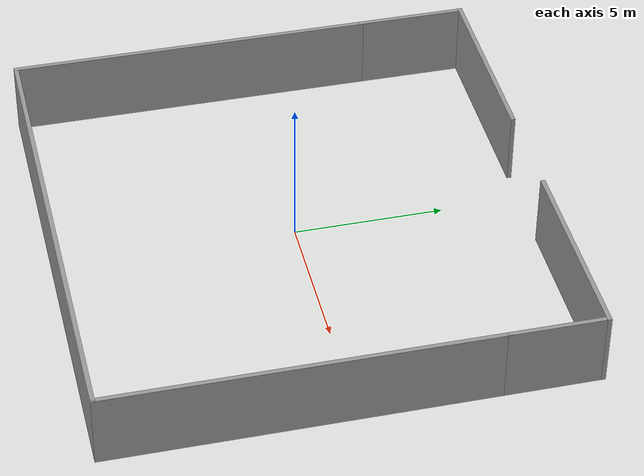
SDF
<?xml version='1.0'?>
<sdf version='1.7'>
  <model name='Hospitalworld3.world'>
    <pose>0.599683 -0.158347 0 0 -0 0</pose>
    <link name='Wall_10'>
      <collision name='Wall_10_Collision'>
        <geometry>
          <box>
            <size>3.25 0.15 2.5</size>
          </box>
        </geometry>
        <pose>0 0 1.25 0 -0 0</pose>
      </collision>
      <visual name='Wall_10_Visual'>
        <pose>0 0 1.25 0 -0 0</pose>
        <geometry>
          <box>
            <size>3.25 0.15 2.5</size>
          </box>
        </geometry>
        <material>
          <script>
            <uri>file://media/materials/scripts/gazebo.material</uri>
            <name>Gazebo/Grey</name>
          </script>
          <ambient>1 1 1 1</ambient>
        </material>
        <meta>
          <layer>0</layer>
        </meta>
      </visual>
      <pose>8.175 6.3 0 0 -0 1.5708</pose>
    </link>
    <link name='Wall_11'>
      <collision name='Wall_11_Collision'>
        <geometry>
          <box>
            <size>6.75 0.15 2.5</size>
          </box>
        </geometry>
        <pose>0 0 1.25 0 -0 0</pose>
      </collision>
      <visual name='Wall_11_Visual'>
        <pose>0 0 1.25 0 -0 0</pose>
        <geometry>
          <box>
            <size>6.75 0.15 2.5</size>
          </box>
        </geometry>
        <material>
          <script>
            <uri>file://media/materials/scripts/gazebo.material</uri>
            <name>Gazebo/Grey</name>
          </script>
          <ambient>1 1 1 1</ambient>
        </material>
        <meta>
          <layer>0</layer>
        </meta>
      </visual>
      <pose>4.875 7.85 0 0 -0 3.14159</pose>
    </link>
    <link name='Wall_13'>
      <collision name='Wall_13_Collision'>
        <geometry>
          <box>
            <size>3.75 0.15 2.5</size>
          </box>
        </geometry>
        <pose>0 0 1.25 0 -0 0</pose>
      </collision>
      <visual name='Wall_13_Visual'>
        <pose>0 0 1.25 0 -0 0</pose>
        <geometry>
          <box>
            <size>3.75 0.15 2.5</size>
          </box>
        </geometry>
        <material>
          <script>
            <uri>file://media/materials/scripts/gazebo.material</uri>
            <name>Gazebo/Grey</name>
          </script>
          <ambient>1 1 1 1</ambient>
        </material>
        <meta>
          <layer>0</layer>
        </meta>
      </visual>
      <pose>-8.175 6.05 0 0 -0 1.5708</pose>
    </link>
    <link name='Wall_14'>
      <collision name='Wall_14_Collision'>
        <geometry>
          <box>
            <size>6.5 0.15 2.5</size>
          </box>
        </geometry>
        <pose>0 0 1.25 0 -0 0</pose>
      </collision>
      <visual name='Wall_14_Visual'>
        <pose>0 0 1.25 0 -0 0</pose>
        <geometry>
          <box>
            <size>6.5 0.15 2.5</size>
          </box>
        </geometry>
        <material>
          <script>
            <uri>file://media/materials/scripts/gazebo.material</uri>
            <name>Gazebo/Grey</name>
          </script>
          <ambient>1 1 1 1</ambient>
        </material>
        <meta>
          <layer>0</layer>
        </meta>
      </visual>
      <pose>-5 7.85 0 0 -0 0</pose>
    </link>
    <link name='Wall_6'>
      <collision name='Wall_6_Collision'>
        <geometry>
          <box>
            <size>12.25 0.15 2.5</size>
          </box>
        </geometry>
        <pose>0 0 1.25 0 -0 0</pose>
      </collision>
      <visual name='Wall_6_Visual'>
        <pose>0 0 1.25 0 -0 0</pose>
        <geometry>
          <box>
            <size>12.25 0.15 2.5</size>
          </box>
        </geometry>
        <material>
          <script>
            <uri>file://media/materials/scripts/gazebo.material</uri>
            <name>Gazebo/Grey</name>
          </script>
          <ambient>1 1 1 1</ambient>
        </material>
        <meta>
          <layer>0</layer>
        </meta>
      </visual>
      <pose>-8.175 -1.8 0 0 -0 -1.5708</pose>
    </link>
    <link name='Wall_7'>
      <collision name='Wall_7_Collision'>
        <geometry>
          <box>
            <size>16.5 0.15 2.5</size>
          </box>
        </geometry>
        <pose>0 0 1.25 0 -0 0</pose>
      </collision>
      <visual name='Wall_7_Visual'>
        <pose>0 0 1.25 0 -0 0</pose>
        <geometry>
          <box>
            <size>16.5 0.15 2.5</size>
          </box>
        </geometry>
        <material>
          <script>
            <uri>file://media/materials/scripts/gazebo.material</uri>
            <name>Gazebo/Grey</name>
          </script>
          <ambient>1 1 1 1</ambient>
        </material>
        <meta>
          <layer>0</layer>
        </meta>
      </visual>
      <pose>0 -7.85 0 0 -0 0</pose>
    </link>
    <link name='Wall_8'>
      <collision name='Wall_8_Collision'>
        <geometry>
          <box>
            <size>12.75 0.15 2.5</size>
          </box>
        </geometry>
        <pose>0 0 1.25 0 -0 0</pose>
      </collision>
      <visual name='Wall_8_Visual'>
        <pose>0 0 1.25 0 -0 0</pose>
        <geometry>
          <box>
            <size>12.75 0.15 2.5</size>
          </box>
        </geometry>
        <material>
          <script>
            <uri>file://media/materials/scripts/gazebo.material</uri>
            <name>Gazebo/Grey</name>
          </script>
          <ambient>1 1 1 1</ambient>
        </material>
        <meta>
          <layer>0</layer>
        </meta>
      </visual>
      <pose>8.175 -1.55 0 0 -0 1.5708</pose>
    </link>
    <static>1</static>
  </model>
</sdf>
